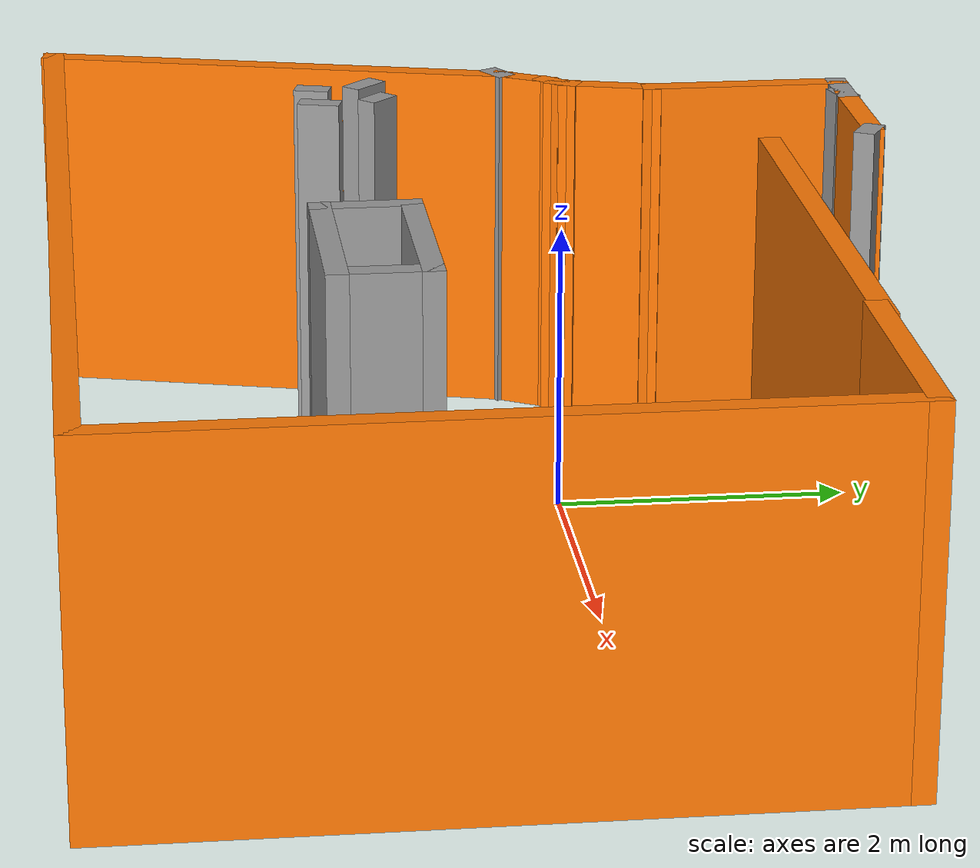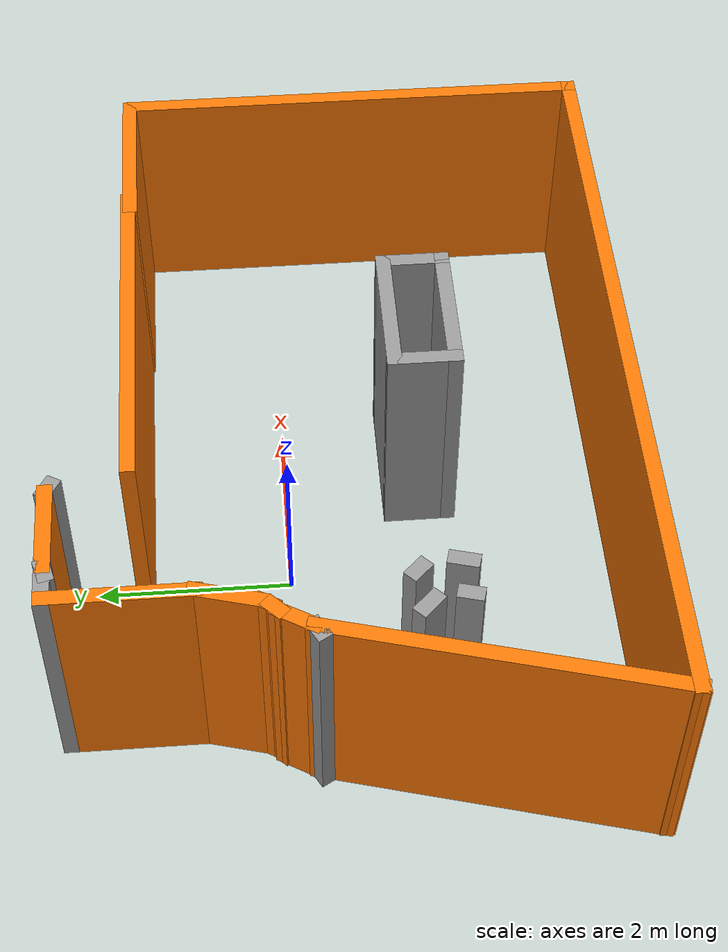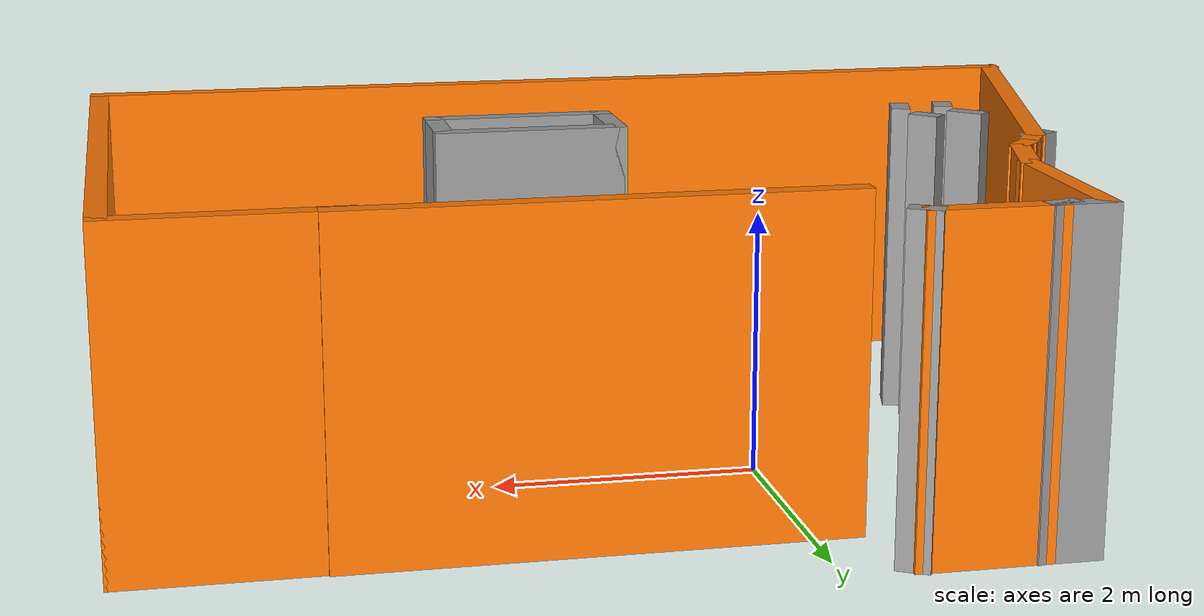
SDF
<?xml version='1.0'?>
<sdf version='1.6'>
  <model name='map_1'>
    <pose frame=''>0.841763 -0.56188 0 0 -0 0</pose>
    <link name='Wall_0'>
      <collision name='Wall_0_Collision'>
        <geometry>
          <box>
            <size>3.75 0.15 2.5</size>
          </box>
        </geometry>
        <pose frame=''>0 0 1.25 0 -0 0</pose>
      </collision>
      <visual name='Wall_0_Visual'>
        <pose frame=''>0 0 1.25 0 -0 0</pose>
        <geometry>
          <box>
            <size>3.75 0.15 2.5</size>
          </box>
        </geometry>
        <material>
          <script>
            <uri>file://media/materials/scripts/gazebo.material</uri>
            <name>Gazebo/Grey</name>
          </script>
          <ambient>0.996078 0.47451 0.0196078 1</ambient>
        </material>
        <meta>
          <layer>0</layer>
        </meta>
      </visual>
      <pose frame=''>0.652818 2.05086 0 0 -0 3.14159</pose>
    </link>
    <link name='Wall_10'>
      <collision name='Wall_10_Collision'>
        <geometry>
          <box>
            <size>0.25 0.15 2.5</size>
          </box>
        </geometry>
        <pose frame=''>0 0 1.25 0 -0 0</pose>
      </collision>
      <visual name='Wall_10_Visual'>
        <pose frame=''>0 0 1.25 0 -0 0</pose>
        <geometry>
          <box>
            <size>0.25 0.15 2.5</size>
          </box>
        </geometry>
        <material>
          <script>
            <uri>file://media/materials/scripts/gazebo.material</uri>
            <name>Gazebo/Grey</name>
          </script>
          <ambient>0.996078 0.47451 0.0196078 1</ambient>
        </material>
        <meta>
          <layer>0</layer>
        </meta>
      </visual>
      <pose frame=''>-2.83917 0.756103 0 0 -0 -2.35619</pose>
    </link>
    <link name='Wall_11'>
      <collision name='Wall_11_Collision'>
        <geometry>
          <box>
            <size>0.5 0.15 2.5</size>
          </box>
        </geometry>
        <pose frame=''>0 0 1.25 0 -0 0</pose>
      </collision>
      <visual name='Wall_11_Visual'>
        <pose frame=''>0 0 1.25 0 -0 0</pose>
        <geometry>
          <box>
            <size>0.5 0.15 2.5</size>
          </box>
        </geometry>
        <material>
          <script>
            <uri>file://media/materials/scripts/gazebo.material</uri>
            <name>Gazebo/Grey</name>
          </script>
          <ambient>0.996078 0.47451 0.0196078 1</ambient>
        </material>
        <meta>
          <layer>0</layer>
        </meta>
      </visual>
      <pose frame=''>-2.96203 0.569193 0 0 -0 -2.0944</pose>
    </link>
    <link name='Wall_12'>
      <collision name='Wall_12_Collision'>
        <geometry>
          <box>
            <size>0.25 0.15 2.5</size>
          </box>
        </geometry>
        <pose frame=''>0 0 1.25 0 -0 0</pose>
      </collision>
      <visual name='Wall_12_Visual'>
        <pose frame=''>0 0 1.25 0 -0 0</pose>
        <geometry>
          <box>
            <size>0.25 0.15 2.5</size>
          </box>
        </geometry>
        <material>
          <script>
            <uri>file://media/materials/scripts/gazebo.material</uri>
            <name>Gazebo/Grey</name>
          </script>
          <ambient>1 1 1 1</ambient>
        </material>
        <meta>
          <layer>0</layer>
        </meta>
      </visual>
      <pose frame=''>-3.09283 0.392639 0 0 -0 -2.61799</pose>
    </link>
    <link name='Wall_14'>
      <collision name='Wall_14_Collision'>
        <geometry>
          <box>
            <size>3.5 0.15 2.5</size>
          </box>
        </geometry>
        <pose frame=''>0 0 1.25 0 -0 0</pose>
      </collision>
      <visual name='Wall_14_Visual'>
        <pose frame=''>0 0 1.25 0 -0 0</pose>
        <geometry>
          <box>
            <size>3.5 0.15 2.5</size>
          </box>
        </geometry>
        <material>
          <script>
            <uri>file://media/materials/scripts/gazebo.material</uri>
            <name>Gazebo/Grey</name>
          </script>
          <ambient>0.996078 0.47451 0.0196078 1</ambient>
        </material>
        <meta>
          <layer>0</layer>
        </meta>
      </visual>
      <pose frame=''>-3.48305 -1.20029 0 0 -0 -1.8326</pose>
    </link>
    <link name='Wall_15'>
      <collision name='Wall_15_Collision'>
        <geometry>
          <box>
            <size>8 0.15 2.5</size>
          </box>
        </geometry>
        <pose frame=''>0 0 1.25 0 -0 0</pose>
      </collision>
      <visual name='Wall_15_Visual'>
        <pose frame=''>0 0 1.25 0 -0 0</pose>
        <geometry>
          <box>
            <size>8 0.15 2.5</size>
          </box>
        </geometry>
        <material>
          <script>
            <uri>file://media/materials/scripts/gazebo.material</uri>
            <name>Gazebo/Grey</name>
          </script>
          <ambient>0.996078 0.47451 0.0196078 1</ambient>
        </material>
        <meta>
          <layer>0</layer>
        </meta>
      </visual>
      <pose frame=''>0.008428 -2.81821 0 0 -0 0</pose>
    </link>
    <link name='Wall_16'>
      <collision name='Wall_16_Collision'>
        <geometry>
          <box>
            <size>5 0.15 2.5</size>
          </box>
        </geometry>
        <pose frame=''>0 0 1.25 0 -0 0</pose>
      </collision>
      <visual name='Wall_16_Visual'>
        <pose frame=''>0 0 1.25 0 -0 0</pose>
        <geometry>
          <box>
            <size>5 0.15 2.5</size>
          </box>
        </geometry>
        <material>
          <script>
            <uri>file://media/materials/scripts/gazebo.material</uri>
            <name>Gazebo/Grey</name>
          </script>
          <ambient>0.996078 0.47451 0.0196078 1</ambient>
        </material>
        <meta>
          <layer>0</layer>
        </meta>
      </visual>
      <pose frame=''>3.93343 -0.393213 0 0 -0 1.5708</pose>
    </link>
    <link name='Wall_17'>
      <collision name='Wall_17_Collision'>
        <geometry>
          <box>
            <size>1.75 0.15 2.5</size>
          </box>
        </geometry>
        <pose frame=''>0 0 1.25 0 -0 0</pose>
      </collision>
      <visual name='Wall_17_Visual'>
        <pose frame=''>0 0 1.25 0 -0 0</pose>
        <geometry>
          <box>
            <size>1.75 0.15 2.5</size>
          </box>
        </geometry>
        <material>
          <script>
            <uri>file://media/materials/scripts/gazebo.material</uri>
            <name>Gazebo/Grey</name>
          </script>
          <ambient>0.996078 0.47451 0.0196078 1</ambient>
        </material>
        <meta>
          <layer>0</layer>
        </meta>
      </visual>
      <pose frame=''>3.13343 2.03179 0 0 -0 3.14159</pose>
    </link>
    <link name='Wall_19'>
      <collision name='Wall_19_Collision'>
        <geometry>
          <box>
            <size>1.5 0.15 2.5</size>
          </box>
        </geometry>
        <pose frame=''>0 0 1.25 0 -0 0</pose>
      </collision>
      <visual name='Wall_19_Visual'>
        <pose frame=''>0 0 1.25 0 -0 0</pose>
        <geometry>
          <box>
            <size>1.5 0.15 2.5</size>
          </box>
        </geometry>
        <material>
          <script>
            <uri>file://media/materials/scripts/gazebo.material</uri>
            <name>Gazebo/Grey</name>
          </script>
          <ambient>1 1 1 1</ambient>
        </material>
        <meta>
          <layer>0</layer>
        </meta>
      </visual>
      <pose frame=''>0.674853 -0.54078 0 0 -0 0</pose>
    </link>
    <link name='Wall_2'>
      <collision name='Wall_2_Collision'>
        <geometry>
          <box>
            <size>0.25 0.15 2.5</size>
          </box>
        </geometry>
        <pose frame=''>0 0 1.25 0 -0 0</pose>
      </collision>
      <visual name='Wall_2_Visual'>
        <pose frame=''>0 0 1.25 0 -0 0</pose>
        <geometry>
          <box>
            <size>0.25 0.15 2.5</size>
          </box>
        </geometry>
        <material>
          <script>
            <uri>file://media/materials/scripts/gazebo.material</uri>
            <name>Gazebo/Grey</name>
          </script>
          <ambient>1 1 1 1</ambient>
        </material>
        <meta>
          <layer>0</layer>
        </meta>
      </visual>
      <pose frame=''>-1.35522 2.78262 0 0 -0 2.61799</pose>
    </link>
    <link name='Wall_20'>
      <collision name='Wall_20_Collision'>
        <geometry>
          <box>
            <size>0.75 0.15 2.5</size>
          </box>
        </geometry>
        <pose frame=''>0 0 1.25 0 -0 0</pose>
      </collision>
      <visual name='Wall_20_Visual'>
        <pose frame=''>0 0 1.25 0 -0 0</pose>
        <geometry>
          <box>
            <size>0.75 0.15 2.5</size>
          </box>
        </geometry>
        <material>
          <script>
            <uri>file://media/materials/scripts/gazebo.material</uri>
            <name>Gazebo/Grey</name>
          </script>
          <ambient>1 1 1 1</ambient>
        </material>
        <meta>
          <layer>0</layer>
        </meta>
      </visual>
      <pose frame=''>1.34985 -0.84078 0 0 -0 -1.5708</pose>
    </link>
    <link name='Wall_21'>
      <collision name='Wall_21_Collision'>
        <geometry>
          <box>
            <size>1.5 0.15 2.5</size>
          </box>
        </geometry>
        <pose frame=''>0 0 1.25 0 -0 0</pose>
      </collision>
      <visual name='Wall_21_Visual'>
        <pose frame=''>0 0 1.25 0 -0 0</pose>
        <geometry>
          <box>
            <size>1.5 0.15 2.5</size>
          </box>
        </geometry>
        <material>
          <script>
            <uri>file://media/materials/scripts/gazebo.material</uri>
            <name>Gazebo/Grey</name>
          </script>
          <ambient>1 1 1 1</ambient>
        </material>
        <meta>
          <layer>0</layer>
        </meta>
      </visual>
      <pose frame=''>0.674853 -1.14078 0 0 -0 3.14159</pose>
    </link>
    <link name='Wall_22'>
      <collision name='Wall_22_Collision'>
        <geometry>
          <box>
            <size>0.75 0.15 2.5</size>
          </box>
        </geometry>
        <pose frame=''>0 0 1.25 0 -0 0</pose>
      </collision>
      <visual name='Wall_22_Visual'>
        <pose frame=''>0 0 1.25 0 -0 0</pose>
        <geometry>
          <box>
            <size>0.75 0.15 2.5</size>
          </box>
        </geometry>
        <material>
          <script>
            <uri>file://media/materials/scripts/gazebo.material</uri>
            <name>Gazebo/Grey</name>
          </script>
          <ambient>1 1 1 1</ambient>
        </material>
        <meta>
          <layer>0</layer>
        </meta>
      </visual>
      <pose frame=''>-0.000147 -0.84078 0 0 -0 1.5708</pose>
    </link>
    <link name='Wall_24'>
      <collision name='Wall_24_Collision'>
        <geometry>
          <box>
            <size>0.25 0.15 2.5</size>
          </box>
        </geometry>
        <pose frame=''>0 0 1.25 0 -0 0</pose>
      </collision>
      <visual name='Wall_24_Visual'>
        <pose frame=''>0 0 1.25 0 -0 0</pose>
        <geometry>
          <box>
            <size>0.25 0.15 2.5</size>
          </box>
        </geometry>
        <material>
          <script>
            <uri>file://media/materials/scripts/gazebo.material</uri>
            <name>Gazebo/Grey</name>
          </script>
          <ambient>1 1 1 1</ambient>
        </material>
        <meta>
          <layer>0</layer>
        </meta>
      </visual>
      <pose frame=''>-2.52338 -0.535735 0 0 -0 -0.785398</pose>
    </link>
    <link name='Wall_27'>
      <collision name='Wall_27_Collision'>
        <geometry>
          <box>
            <size>0.3 0.15 2.5</size>
          </box>
        </geometry>
        <pose frame=''>0 0 1.25 0 -0 0</pose>
      </collision>
      <visual name='Wall_27_Visual'>
        <pose frame=''>0 0 1.25 0 -0 0</pose>
        <geometry>
          <box>
            <size>0.3 0.15 2.5</size>
          </box>
        </geometry>
        <material>
          <script>
            <uri>file://media/materials/scripts/gazebo.material</uri>
            <name>Gazebo/Grey</name>
          </script>
          <ambient>1 1 1 1</ambient>
        </material>
        <meta>
          <layer>0</layer>
        </meta>
      </visual>
      <pose frame=''>-2.89485 -0.600373 0 0 -0 2.35619</pose>
    </link>
    <link name='Wall_29'>
      <collision name='Wall_29_Collision'>
        <geometry>
          <box>
            <size>0.25 0.15 2.5</size>
          </box>
        </geometry>
        <pose frame=''>0 0 1.25 0 -0 0</pose>
      </collision>
      <visual name='Wall_29_Visual'>
        <pose frame=''>0 0 1.25 0 -0 0</pose>
        <geometry>
          <box>
            <size>0.25 0.15 2.5</size>
          </box>
        </geometry>
        <material>
          <script>
            <uri>file://media/materials/scripts/gazebo.material</uri>
            <name>Gazebo/Grey</name>
          </script>
          <ambient>1 1 1 1</ambient>
        </material>
        <meta>
          <layer>0</layer>
        </meta>
      </visual>
      <pose frame=''>-2.81176 -0.976829 0 0 -0 -1.8326</pose>
    </link>
    <link name='Wall_3'>
      <collision name='Wall_3_Collision'>
        <geometry>
          <box>
            <size>1 0.15 2.5</size>
          </box>
        </geometry>
        <pose frame=''>0 0 1.25 0 -0 0</pose>
      </collision>
      <visual name='Wall_3_Visual'>
        <pose frame=''>0 0 1.25 0 -0 0</pose>
        <geometry>
          <box>
            <size>1 0.15 2.5</size>
          </box>
        </geometry>
        <material>
          <script>
            <uri>file://media/materials/scripts/gazebo.material</uri>
            <name>Gazebo/Grey</name>
          </script>
          <ambient>0.996078 0.47451 0.0196078 1</ambient>
        </material>
        <meta>
          <layer>0</layer>
        </meta>
      </visual>
      <pose frame=''>-1.82353 2.80762 0 0 -0 3.14159</pose>
    </link>
    <link name='Wall_31'>
      <collision name='Wall_31_Collision'>
        <geometry>
          <box>
            <size>0.3 0.15 2.5</size>
          </box>
        </geometry>
        <pose frame=''>0 0 1.25 0 -0 0</pose>
      </collision>
      <visual name='Wall_31_Visual'>
        <pose frame=''>0 0 1.25 0 -0 0</pose>
        <geometry>
          <box>
            <size>0.3 0.15 2.5</size>
          </box>
        </geometry>
        <material>
          <script>
            <uri>file://media/materials/scripts/gazebo.material</uri>
            <name>Gazebo/Grey</name>
          </script>
          <ambient>1 1 1 1</ambient>
        </material>
        <meta>
          <layer>0</layer>
        </meta>
      </visual>
      <pose frame=''>-2.44195 -0.952813 0 0 -0 1.309</pose>
    </link>
    <link name='Wall_4'>
      <collision name='Wall_4_Collision'>
        <geometry>
          <box>
            <size>0.25 0.15 2.5</size>
          </box>
        </geometry>
        <pose frame=''>0 0 1.25 0 -0 0</pose>
      </collision>
      <visual name='Wall_4_Visual'>
        <pose frame=''>0 0 1.25 0 -0 0</pose>
        <geometry>
          <box>
            <size>0.25 0.15 2.5</size>
          </box>
        </geometry>
        <material>
          <script>
            <uri>file://media/materials/scripts/gazebo.material</uri>
            <name>Gazebo/Grey</name>
          </script>
          <ambient>1 1 1 1</ambient>
        </material>
        <meta>
          <layer>0</layer>
        </meta>
      </visual>
      <pose frame=''>-2.29682 2.79467 0 0 -0 -2.87979</pose>
    </link>
    <link name='Wall_6'>
      <collision name='Wall_6_Collision'>
        <geometry>
          <box>
            <size>0.5 0.15 2.5</size>
          </box>
        </geometry>
        <pose frame=''>0 0 1.25 0 -0 0</pose>
      </collision>
      <visual name='Wall_6_Visual'>
        <pose frame=''>0 0 1.25 0 -0 0</pose>
        <geometry>
          <box>
            <size>0.5 0.15 2.5</size>
          </box>
        </geometry>
        <material>
          <script>
            <uri>file://media/materials/scripts/gazebo.material</uri>
            <name>Gazebo/Grey</name>
          </script>
          <ambient>1 1 1 1</ambient>
        </material>
        <meta>
          <layer>0</layer>
        </meta>
      </visual>
      <pose frame=''>-2.42353 2.80762 0 0 -0 3.14159</pose>
    </link>
    <link name='Wall_7'>
      <collision name='Wall_7_Collision'>
        <geometry>
          <box>
            <size>1.5 0.15 2.5</size>
          </box>
        </geometry>
        <pose frame=''>0 0 1.25 0 -0 0</pose>
      </collision>
      <visual name='Wall_7_Visual'>
        <pose frame=''>0 0 1.25 0 -0 0</pose>
        <geometry>
          <box>
            <size>1.5 0.15 2.5</size>
          </box>
        </geometry>
        <material>
          <script>
            <uri>file://media/materials/scripts/gazebo.material</uri>
            <name>Gazebo/Grey</name>
          </script>
          <ambient>0.996078 0.47451 0.0196078 1</ambient>
        </material>
        <meta>
          <layer>0</layer>
        </meta>
      </visual>
      <pose frame=''>-2.59853 2.13262 0 0 -0 -1.5708</pose>
    </link>
    <link name='Wall_8'>
      <collision name='Wall_8_Collision'>
        <geometry>
          <box>
            <size>0.75 0.15 2.5</size>
          </box>
        </geometry>
        <pose frame=''>0 0 1.25 0 -0 0</pose>
      </collision>
      <visual name='Wall_8_Visual'>
        <pose frame=''>0 0 1.25 0 -0 0</pose>
        <geometry>
          <box>
            <size>0.75 0.15 2.5</size>
          </box>
        </geometry>
        <material>
          <script>
            <uri>file://media/materials/scripts/gazebo.material</uri>
            <name>Gazebo/Grey</name>
          </script>
          <ambient>0.996078 0.47451 0.0196078 1</ambient>
        </material>
        <meta>
          <layer>0</layer>
        </meta>
      </visual>
      <pose frame=''>-2.67617 1.16784 0 0 -0 -1.8326</pose>
    </link>
    <link name='Wall_9'>
      <collision name='Wall_9_Collision'>
        <geometry>
          <box>
            <size>0.25 0.15 2.5</size>
          </box>
        </geometry>
        <pose frame=''>0 0 1.25 0 -0 0</pose>
      </collision>
      <visual name='Wall_9_Visual'>
        <pose frame=''>0 0 1.25 0 -0 0</pose>
        <geometry>
          <box>
            <size>0.25 0.15 2.5</size>
          </box>
        </geometry>
        <material>
          <script>
            <uri>file://media/materials/scripts/gazebo.material</uri>
            <name>Gazebo/Grey</name>
          </script>
          <ambient>0.996078 0.47451 0.0196078 1</ambient>
        </material>
        <meta>
          <layer>0</layer>
        </meta>
      </visual>
      <pose frame=''>-2.77882 0.83476 0 0 -0 -2.0944</pose>
    </link>
    <static>1</static>
  </model>
</sdf>
